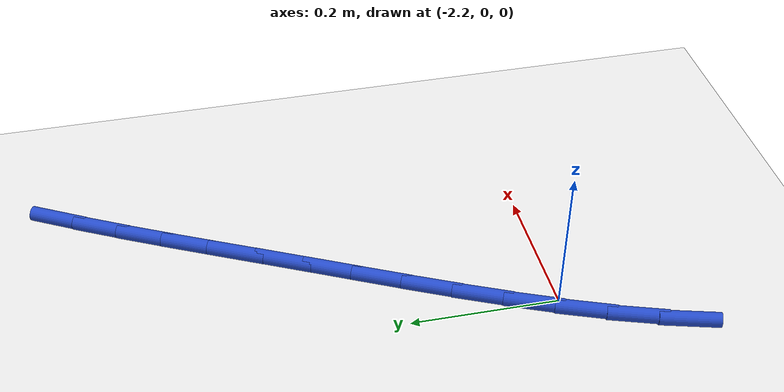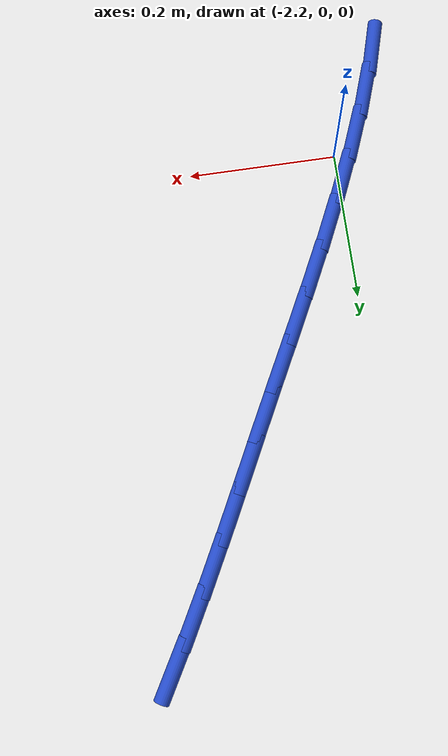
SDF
<sdf version="1.6">
 <world name="default">
  <model name="ground_plane">
   <static>1</static>
   <link name="link">
    <collision name="collision">
     <geometry><plane><normal>0 0 1</normal><size>100 100</size></plane></geometry>
     <surface><friction><ode><mu>100</mu><mu2>50</mu2></ode></friction></surface>
    </collision>
    <visual name="visual">
     <cast_shadows>0</cast_shadows>
     <geometry><plane><normal>0 0 1</normal><size>100 100</size></plane></geometry>
     <material>
      <script><uri>file://media/materials/scripts/gazebo.material</uri><name>Gazebo/WhiteGlow</name></script>
     </material>
    </visual>
   </link>
  </model>
  <model name="line">
   <link name="link_42">
    <pose>-1.9031472363773754 0.6283678749324633 0.01 0 1.57 1.0572556592513418</pose>
    <collision name="collision">
     <geometry><cylinder><radius>0.01</radius><length>0.08</length></cylinder></geometry>
    </collision>
    <visual name="visual">
     <material>
      <script><name>Gazebo/Blue</name><uri>file://media/materials/scripts/gazebo.material</uri></script>
     </material>
     <geometry><cylinder><radius>0.01</radius><length>0.08</length></cylinder></geometry>
    </visual>
   </link>
   <link name="link_43">
    <pose>-1.9347246316142683 0.5723812173618076 0.01 0 1.57 1.078691848070919</pose>
    <collision name="collision">
     <geometry><cylinder><radius>0.01</radius><length>0.08</length></cylinder></geometry>
    </collision>
    <visual name="visual">
     <material>
      <script><name>Gazebo/Blue</name><uri>file://media/materials/scripts/gazebo.material</uri></script>
     </material>
     <geometry><cylinder><radius>0.01</radius><length>0.08</length></cylinder></geometry>
    </visual>
   </link>
   <link name="link_44">
    <pose>-1.9653420540173003 0.5152692189007192 0.01 0 1.57 1.0935571455085789</pose>
    <collision name="collision">
     <geometry><cylinder><radius>0.01</radius><length>0.08</length></cylinder></geometry>
    </collision>
    <visual name="visual">
     <material>
      <script><name>Gazebo/Blue</name><uri>file://media/materials/scripts/gazebo.material</uri></script>
     </material>
     <geometry><cylinder><radius>0.01</radius><length>0.08</length></cylinder></geometry>
    </visual>
   </link>
   <link name="link_45">
    <pose>-1.9953672030020972 0.4572054870591005 0.01 0 1.57 1.1020004708735467</pose>
    <collision name="collision">
     <geometry><cylinder><radius>0.01</radius><length>0.08</length></cylinder></geometry>
    </collision>
    <visual name="visual">
     <material>
      <script><name>Gazebo/Blue</name><uri>file://media/materials/scripts/gazebo.material</uri></script>
     </material>
     <geometry><cylinder><radius>0.01</radius><length>0.08</length></cylinder></geometry>
    </visual>
   </link>
   <link name="link_46">
    <pose>-2.0251677779842874 0.3983636293468538 0.01 0 1.57 1.1041855765800017</pose>
    <collision name="collision">
     <geometry><cylinder><radius>0.01</radius><length>0.08</length></cylinder></geometry>
    </collision>
    <visual name="visual">
     <material>
      <script><name>Gazebo/Blue</name><uri>file://media/materials/scripts/gazebo.material</uri></script>
     </material>
     <geometry><cylinder><radius>0.01</radius><length>0.08</length></cylinder></geometry>
    </visual>
   </link>
   <link name="link_47">
    <pose>-2.055111478379497 0.33891725327388134 0.01 0 1.57 1.1006473696611159</pose>
    <collision name="collision">
     <geometry><cylinder><radius>0.01</radius><length>0.08</length></cylinder></geometry>
    </collision>
    <visual name="visual">
     <material>
      <script><name>Gazebo/Blue</name><uri>file://media/materials/scripts/gazebo.material</uri></script>
     </material>
     <geometry><cylinder><radius>0.01</radius><length>0.08</length></cylinder></geometry>
    </visual>
   </link>
   <link name="link_48">
    <pose>-2.085540550060458 0.27903557690766034 0.01 0 1.57 1.0982805447355677</pose>
    <collision name="collision">
     <geometry><cylinder><radius>0.01</radius><length>0.08</length></cylinder></geometry>
    </collision>
    <visual name="visual">
     <material>
      <script><name>Gazebo/Blue</name><uri>file://media/materials/scripts/gazebo.material</uri></script>
     </material>
     <geometry><cylinder><radius>0.01</radius><length>0.08</length></cylinder></geometry>
    </visual>
   </link>
   <link name="link_49">
    <pose>-2.116325728674544 0.21880650676719351 0.01 0 1.57 1.1029812554959189</pose>
    <collision name="collision">
     <geometry><cylinder><radius>0.01</radius><length>0.08</length></cylinder></geometry>
    </collision>
    <visual name="visual">
     <material>
      <script><name>Gazebo/Blue</name><uri>file://media/materials/scripts/gazebo.material</uri></script>
     </material>
     <geometry><cylinder><radius>0.01</radius><length>0.08</length></cylinder></geometry>
    </visual>
   </link>
   <link name="link_50">
    <pose>-2.146921994504746 0.1582462527026806 0.01 0 1.57 1.1149420021286505</pose>
    <collision name="collision">
     <geometry><cylinder><radius>0.01</radius><length>0.08</length></cylinder></geometry>
    </collision>
    <visual name="visual">
     <material>
      <script><name>Gazebo/Blue</name><uri>file://media/materials/scripts/gazebo.material</uri></script>
     </material>
     <geometry><cylinder><radius>0.01</radius><length>0.08</length></cylinder></geometry>
    </visual>
   </link>
   <link name="link_51">
    <pose>-2.17677008065108 0.09736856764939864 0.01 0 1.57 1.1343122968286794</pose>
    <collision name="collision">
     <geometry><cylinder><radius>0.01</radius><length>0.08</length></cylinder></geometry>
    </collision>
    <visual name="visual">
     <material>
      <script><name>Gazebo/Blue</name><uri>file://media/materials/scripts/gazebo.material</uri></script>
     </material>
     <geometry><cylinder><radius>0.01</radius><length>0.08</length></cylinder></geometry>
    </visual>
   </link>
   <link name="link_52">
    <pose>-2.2053107202135624 0.036187204542624286 0.01 0 1.57 1.161390512768973</pose>
    <collision name="collision">
     <geometry><cylinder><radius>0.01</radius><length>0.08</length></cylinder></geometry>
    </collision>
    <visual name="visual">
     <material>
      <script><name>Gazebo/Blue</name><uri>file://media/materials/scripts/gazebo.material</uri></script>
     </material>
     <geometry><cylinder><radius>0.01</radius><length>0.08</length></cylinder></geometry>
    </visual>
   </link>
   <link name="link_53">
    <pose>-2.231984646292209 -0.025284083682365722 0.01 0 1.57 1.1966028075720545</pose>
    <collision name="collision">
     <geometry><cylinder><radius>0.01</radius><length>0.08</length></cylinder></geometry>
    </collision>
    <visual name="visual">
     <material>
      <script><name>Gazebo/Blue</name><uri>file://media/materials/scripts/gazebo.material</uri></script>
     </material>
     <geometry><cylinder><radius>0.01</radius><length>0.08</length></cylinder></geometry>
    </visual>
   </link>
   <link name="link_54">
    <pose>-2.256232591987035 -0.08703154409029441 0.01 0 1.57 1.2404676841585818</pose>
    <collision name="collision">
     <geometry><cylinder><radius>0.01</radius><length>0.08</length></cylinder></geometry>
    </collision>
    <visual name="visual">
     <material>
      <script><name>Gazebo/Blue</name><uri>file://media/materials/scripts/gazebo.material</uri></script>
     </material>
     <geometry><cylinder><radius>0.01</radius><length>0.08</length></cylinder></geometry>
    </visual>
   </link>
   <link name="link_55">
    <pose>-2.2774952903980594 -0.14904142374588514 0.01 0 1.57 1.2935360441902077</pose>
    <collision name="collision">
     <geometry><cylinder><radius>0.01</radius><length>0.08</length></cylinder></geometry>
    </collision>
    <visual name="visual">
     <material>
      <script><name>Gazebo/Blue</name><uri>file://media/materials/scripts/gazebo.material</uri></script>
     </material>
     <geometry><cylinder><radius>0.01</radius><length>0.08</length></cylinder></geometry>
    </visual>
   </link>
  </model>
 </world>
</sdf>
